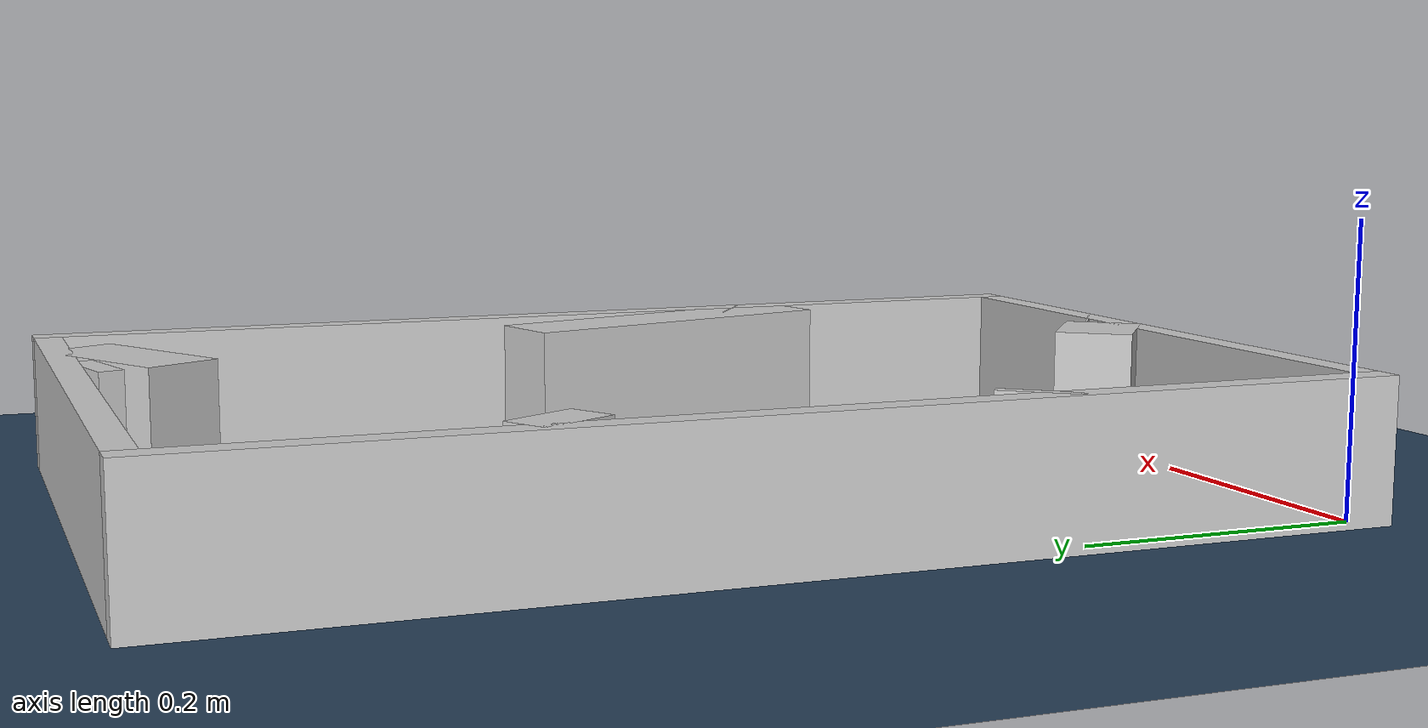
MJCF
<?xml version="1.0" ?>
<mujoco model="generated_real_template">
  <compiler angle="degree"/>
  <option timestep="0.002" integrator="implicitfast" iterations="100" cone="elliptic"/>
  <default>
    <geom density="1"/>
  </default>
  <asset>
    <texture builtin="gradient" height="3072" rgb1="0.3 0.5 0.7" rgb2="0 0 0" type="skybox" width="512"/>
    <texture builtin="checker" height="300" mark="edge" markrgb="0.8 0.8 0.8" name="groundplane" rgb1="0.2 0.3 0.4" rgb2="0.1 0.2 0.3" type="2d" width="300"/>
    <material name="groundplane" reflectance="0.2" texrepeat="5 5" texture="groundplane" texuniform="true"/>
  </asset>
  <worldbody>
    <light dir="0 0 -1" directional="true" pos="0 0 1.5"/>
    <geom name="floor" type="plane" condim="4" friction="0.5 0.005 0.001" material="groundplane" size="0 0 0.05"/>
    <body name="walls">
      <geom name="wall_boundary_left" type="box" condim="4" friction="1.0 0.005 0.0001" rgba="0.8 0.8 0.8 1" pos="-0.010000 0.387500 0.050000" euler="0 0 0.000000" size="0.010000 0.407500 0.050000"/>
      <geom name="wall_boundary_right" type="box" condim="4" friction="1.0 0.005 0.0001" rgba="0.8 0.8 0.8 1" pos="0.500000 0.387500 0.050000" euler="0 0 0.000000" size="0.010000 0.407500 0.050000"/>
      <geom name="wall_boundary_bottom" type="box" condim="4" friction="1.0 0.005 0.0001" rgba="0.8 0.8 0.8 1" pos="0.245000 -0.010000 0.050000" euler="0 0 0.000000" size="0.245000 0.010000 0.050000"/>
      <geom name="wall_boundary_top" type="box" condim="4" friction="1.0 0.005 0.0001" rgba="0.8 0.8 0.8 1" pos="0.245000 0.785000 0.050000" euler="0 0 0.000000" size="0.245000 0.010000 0.050000"/>
      <geom name="wall_inner_1_1" type="box" condim="4" friction="1.0 0.005 0.0001" rgba="0.8 0.8 0.8 1" pos="0.324011 0.766465 0.050000" euler="0 0 -74.665361" size="0.008850 0.028500 0.050000"/>
      <geom name="wall_inner_1_2" type="box" condim="4" friction="1.0 0.005 0.0001" rgba="0.8 0.8 0.8 1" pos="0.447957 0.314469 0.050000" euler="0 0 -74.665361" size="0.130672 0.028500 0.050000"/>
      <geom name="wall_inner_2_1" type="box" condim="4" friction="1.0 0.005 0.0001" rgba="0.8 0.8 0.8 1" pos="0.264417 0.024888 0.050000" euler="0 0 141.473031" size="0.036269 0.028500 0.050000"/>
      <geom name="wall_inner_2_2" type="box" condim="4" friction="1.0 0.005 0.0001" rgba="0.8 0.8 0.8 1" pos="0.003245 0.232834 0.050000" euler="0 0 141.473031" size="0.004148 0.028500 0.050000"/>
      <geom name="wall_inner_3_1" type="box" condim="4" friction="1.0 0.005 0.0001" rgba="0.8 0.8 0.8 1" pos="0.370484 0.739848 0.050000" euler="0 0 -150.723494" size="0.061943 0.028500 0.050000"/>
      <geom name="wall_inner_3_2" type="box" condim="4" friction="1.0 0.005 0.0001" rgba="0.8 0.8 0.8 1" pos="0.014809 0.540444 0.050000" euler="0 0 -150.723494" size="0.016977 0.028500 0.050000"/>
      <geom name="wall_inner_4_1" type="box" condim="4" friction="1.0 0.005 0.0001" rgba="0.8 0.8 0.8 1" pos="0.318147 0.000728 0.050000" euler="0 0 54.797782" size="0.000890 0.028500 0.050000"/>
      <geom name="wall_inner_4_2" type="box" condim="4" friction="1.0 0.005 0.0001" rgba="0.8 0.8 0.8 1" pos="0.486353 0.239154 0.050000" euler="0 0 54.797782" size="0.000621 0.028500 0.050000"/>
    </body>
  </worldbody>
</mujoco>
